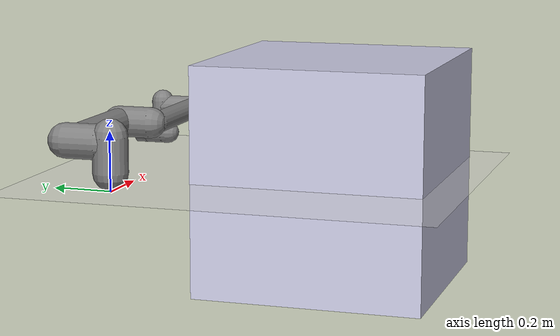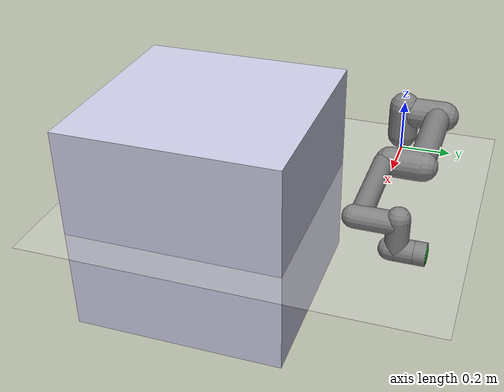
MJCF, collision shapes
<mujoco model="ur5e_contact_scene">
  <compiler angle="radian" meshdir="assets" autolimits="true"/>

  <option integrator="implicitfast" gravity="0 0 -9.81"/>

  <default>
    <default class="ur5e">
      <material specular="0.5" shininess="0.25"/>
      <joint axis="0 1 0" range="-6.28319 6.28319" armature="0.1"/>
      <general gaintype="fixed" biastype="affine" ctrlrange="-6.2831 6.2831" gainprm="5000" biasprm="0 -5000 -1000" forcerange="-150 150"/>
      <default class="size3">
        <default class="size3_limited">
          <joint range="-3.1415 3.1415"/>
          <general ctrlrange="-3.1415 3.1415"/>
        </default>
      </default>
      <default class="size1">
        <general gainprm="1000" biasprm="0 -1000 -200" forcerange="-28 28"/>
      </default>
      <default class="visual">
        <geom type="mesh" contype="0" conaffinity="0" group="2"/>
      </default>
      <default class="collision">
        <geom type="capsule" group="3"/>
        <default class="eef_collision">
          <geom type="cylinder"/>
        </default>
      </default>
      <site size="0.001" rgba="0.5 0.5 0.5 0.3" group="4"/>
    </default>
  </default>

  <asset>
    <material class="ur5e" name="black" rgba="0.033 0.033 0.033 1"/>
    <material class="ur5e" name="jointgray" rgba="0.278 0.278 0.278 1"/>
    <material class="ur5e" name="linkgray" rgba="0.82 0.82 0.82 1"/>
    <material class="ur5e" name="urblue" rgba="0.49 0.678 0.8 1"/>

    <mesh file="base_0.obj"/>
    <mesh file="base_1.obj"/>
    <mesh file="shoulder_0.obj"/>
    <mesh file="shoulder_1.obj"/>
    <mesh file="shoulder_2.obj"/>
    <mesh file="upperarm_0.obj"/>
    <mesh file="upperarm_1.obj"/>
    <mesh file="upperarm_2.obj"/>
    <mesh file="upperarm_3.obj"/>
    <mesh file="forearm_0.obj"/>
    <mesh file="forearm_1.obj"/>
    <mesh file="forearm_2.obj"/>
    <mesh file="forearm_3.obj"/>
    <mesh file="wrist1_0.obj"/>
    <mesh file="wrist1_1.obj"/>
    <mesh file="wrist1_2.obj"/>
    <mesh file="wrist2_0.obj"/>
    <mesh file="wrist2_1.obj"/>
    <mesh file="wrist2_2.obj"/>
    <mesh file="wrist3.obj"/>
  </asset>

  <worldbody>
    <light name="spotlight" mode="targetbodycom" target="wrist_2_link" pos="0 -1 2"/>

    <!-- 接触平面：用于力控制测试 (10cm高的桌面) -->
    <geom name="contact_table" type="box" pos="0.6 -0.6 0.00" size="0.4 0.4 0.4"
          rgba="0.8 0.8 0.9 1" friction="0.5 0.005 0.0001" contype="1" conaffinity="1"/>

    <!-- 地面 -->
    <geom name="floor" type="plane" size="2 2 0.1" pos="0 0 0"
          rgba="0.9 0.9 0.9 1" contype="1" conaffinity="1"/>

    <!-- UR5e 机器人 -->
    <body name="base" pos="0.0 0.0 0" childclass="ur5e">
      <inertial mass="4.0" pos="0 0 0" diaginertia="0.00443333156 0.00443333156 0.0072"/>
      <geom mesh="base_0" material="black" class="visual"/>
      <geom mesh="base_1" material="jointgray" class="visual"/>
      <body name="shoulder_link" pos="0 0 0.163">
        <inertial mass="3.7" pos="0 0 0" diaginertia="0.0102675 0.0102675 0.00666"/>
        <joint name="shoulder_pan_joint" class="size3" axis="0 0 1"/>
        <geom mesh="shoulder_0" material="urblue" class="visual"/>
        <geom mesh="shoulder_1" material="black" class="visual"/>
        <geom mesh="shoulder_2" material="jointgray" class="visual"/>
        <geom class="collision" size="0.06 0.06" pos="0 0 -0.04"/>
        <body name="upper_arm_link" pos="0 0.138 0" quat="1 0 1 0">
          <inertial mass="8.393" pos="0 0 0.2125" diaginertia="0.133886 0.133886 0.0151074"/>
          <joint name="shoulder_lift_joint" class="size3"/>
          <geom mesh="upperarm_0" material="linkgray" class="visual"/>
          <geom mesh="upperarm_1" material="black" class="visual"/>
          <geom mesh="upperarm_2" material="jointgray" class="visual"/>
          <geom mesh="upperarm_3" material="urblue" class="visual"/>
          <geom class="collision" pos="0 -0.04 0" quat="1 1 0 0" size="0.06 0.06"/>
          <geom class="collision" size="0.05 0.2" pos="0 0 0.2"/>
          <body name="forearm_link" pos="0 -0.131 0.425">
            <inertial mass="2.275" pos="0 0 0.196" diaginertia="0.0311796 0.0311796 0.004095"/>
            <joint name="elbow_joint" class="size3_limited"/>
            <geom mesh="forearm_0" material="urblue" class="visual"/>
            <geom mesh="forearm_1" material="linkgray" class="visual"/>
            <geom mesh="forearm_2" material="black" class="visual"/>
            <geom mesh="forearm_3" material="jointgray" class="visual"/>
            <geom class="collision" pos="0 0.08 0" quat="1 1 0 0" size="0.055 0.06"/>
            <geom class="collision" size="0.038 0.19" pos="0 0 0.2"/>
            <body name="wrist_1_link" pos="0 0 0.392" quat="1 0 1 0">
              <inertial mass="1.219" pos="0 0.127 0" diaginertia="0.0025599 0.0025599 0.0021942"/>
              <joint name="wrist_1_joint" class="size1"/>
              <geom mesh="wrist1_0" material="black" class="visual"/>
              <geom mesh="wrist1_1" material="urblue" class="visual"/>
              <geom mesh="wrist1_2" material="jointgray" class="visual"/>
              <geom class="collision" pos="0 0.05 0" quat="1 1 0 0" size="0.04 0.07"/>
              <body name="wrist_2_link" pos="0 0.127 0">
                <inertial mass="1.219" pos="0 0 0.1" diaginertia="0.0025599 0.0025599 0.0021942"/>
                <joint name="wrist_2_joint" axis="0 0 1" class="size1"/>
                <geom mesh="wrist2_0" material="black" class="visual"/>
                <geom mesh="wrist2_1" material="urblue" class="visual"/>
                <geom mesh="wrist2_2" material="jointgray" class="visual"/>
                <geom class="collision" size="0.04 0.06" pos="0 0 0.04"/>
                <geom class="collision" pos="0 0.02 0.1" quat="1 1 0 0" size="0.04 0.04"/>
                <body name="wrist_3_link" pos="0 0 0.1">
                  <inertial mass="0.1889" pos="0 0.0771683 0" quat="1 0 0 1" diaginertia="0.000132134 9.90863e-05 9.90863e-05"/>
                  <joint name="wrist_3_joint" class="size1"/>
                  <geom material="linkgray" mesh="wrist3" class="visual"/>
                  <geom class="eef_collision" pos="0 0.08 0" quat="1 1 0 0" size="0.04 0.02"/>
                  <site name="attachment_site" pos="0 0.1 0" quat="-1 1 0 0"/>
                  <body name="flange" pos="0 0.090 0" quat="0.707107 -0.707107 0 0">
                    <!-- FT-Sensor -->
                    <site name="ee_site" type="cylinder" size="0.0375 0.0001" pos="0 0.0 0.0" euler="0 0 0" rgba="1 0 0 1"/>

                    <!-- 末端接触盘：圆柱体，直径60mm，高度5mm -->
                    <!-- 添加弹性属性：solref控制弹簧刚度和阻尼，solimp控制柔性层 -->
                    <geom name="ee_contact_disk" type="cylinder" size="0.03 0.0025"
                          pos="0 0 0.01" quat="1 0 0 0"
                          rgba="0.2 0.7 0.2 0.5" contype="1" conaffinity="1"
                          friction="0.8 0.005 0.0001" mass="0.05"
                          solref="0.01 1.0" solimp="0.9 0.95 0.001 0.5 2"/>
                  </body>
                </body>
              </body>
            </body>
          </body>
        </body>
      </body>
    </body>
  </worldbody>

  <actuator>
    <general class="size3" name="shoulder_pan" joint="shoulder_pan_joint"/>
    <general class="size3" name="shoulder_lift" joint="shoulder_lift_joint"/>
    <general class="size3_limited" name="elbow" joint="elbow_joint"/>
    <general class="size1" name="wrist_1" joint="wrist_1_joint"/>
    <general class="size1" name="wrist_2" joint="wrist_2_joint"/>
    <general class="size1" name="wrist_3" joint="wrist_3_joint"/>
  </actuator>

  <sensor>
    <force name="ee_force_sensor" site="ee_site"/>
    <torque name="ee_torque_sensor" site="ee_site"/>
  </sensor>

</mujoco>
